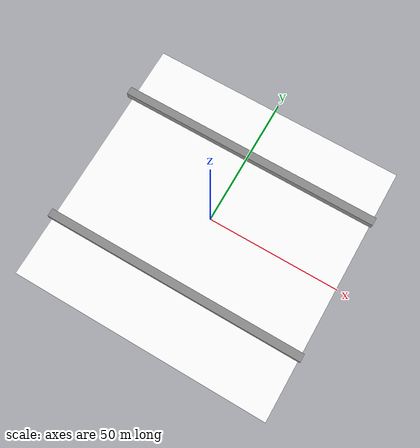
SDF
<?xml version="1.0" ?>
<sdf version="1.9">
  <world name="guardian_gc_micro_corridor_clean">
    <physics name="1ms" type="ignored">
      <max_step_size>0.001</max_step_size>
      <real_time_factor>1.0</real_time_factor>
    </physics>
    <plugin filename="gz-sim-physics-system" name="gz::sim::systems::Physics"></plugin>
    <plugin filename="gz-sim-user-commands-system" name="gz::sim::systems::UserCommands"></plugin>
    <plugin filename="gz-sim-scene-broadcaster-system" name="gz::sim::systems::SceneBroadcaster"></plugin>

    <scene>
      <ambient>0.45 0.45 0.45 1</ambient>
      <background>0.55 0.58 0.62 1</background>
    </scene>

    <light type="directional" name="sun">
      <cast_shadows>true</cast_shadows>
      <pose>0 0 10 0.3 0.5 0</pose>
      <diffuse>0.95 0.95 0.95 1</diffuse>
      <specular>0.2 0.2 0.2 1</specular>
    </light>

    <model name="open_field_floor">
      <static>true</static>
      <pose>0 0 -5 0 0 0</pose>
      <link name="link">
        <collision name="collision">
          <geometry>
            <box>
              <size>100 100 10</size>
            </box>
          </geometry>
        </collision>
        <visual name="visual_bottom">
          <pose>0 0 -7.500 0 0 0</pose>
          <geometry>
            <box>
              <size>100 100 5</size>
            </box>
          </geometry>
          <material>
            <ambient>0.984 1.000 0.808 1</ambient>
            <diffuse>0.984 1.000 0.808 1</diffuse>
            <specular>0.05 0.05 0.05 1</specular>
          </material>
        </visual>
        <visual name="visual_top">
          <pose>0 0 -2.500 0 0 0</pose>
          <geometry>
            <box>
              <size>100 100 5</size>
            </box>
          </geometry>
          <material>
            <ambient>1.000 1.000 1.000 1</ambient>
            <diffuse>1.000 1.000 1.000 1</diffuse>
            <specular>0.05 0.05 0.05 1</specular>
          </material>
        </visual>
      </link>
    </model>

    <model name="guardian_obstacles_baked">
      <static>true</static>
      <pose>0 0 0 0 0 0</pose>
      <link name="link">
        <collision name="collision_0">
          <pose>0.5000 -26.3053 1.5000 0.0000 0.0000 0.0000</pose>
          <geometry>
            <box>
              <size>99.0000 3.0000 3.0000</size>
            </box>
          </geometry>
        </collision>
        <collision name="collision_1">
          <pose>0.0000 26.9399 1.5000 0.0000 0.0000 0.0000</pose>
          <geometry>
            <box>
              <size>100.0000 3.0000 3.0000</size>
            </box>
          </geometry>
        </collision>
        <visual name="visual">
          <geometry>
            <mesh>
              <uri>file://obstacle_meshes/guardian_obstacles_baked.obj</uri>
            </mesh>
          </geometry>
          <material>
            <ambient>0.45 0.45 0.45 1</ambient>
            <diffuse>0.55 0.55 0.55 1</diffuse>
            <specular>0.08 0.08 0.08 1</specular>
          </material>
        </visual>
      </link>
    </model>
  </world>
</sdf>
